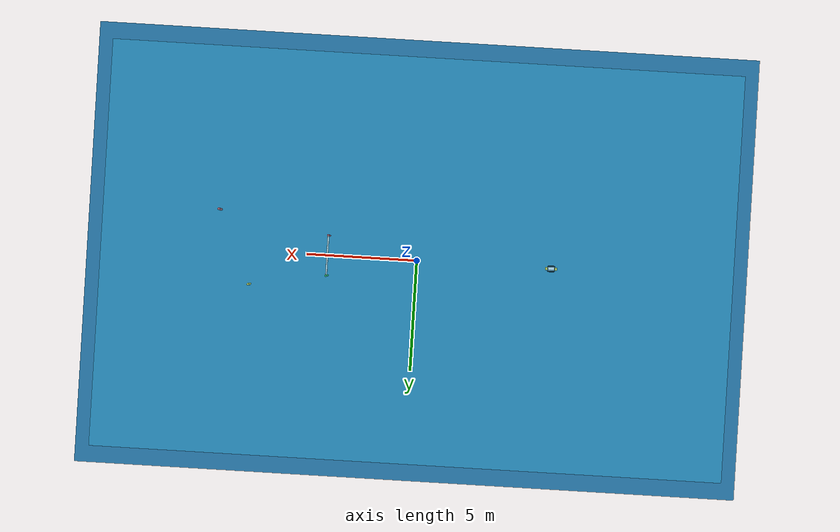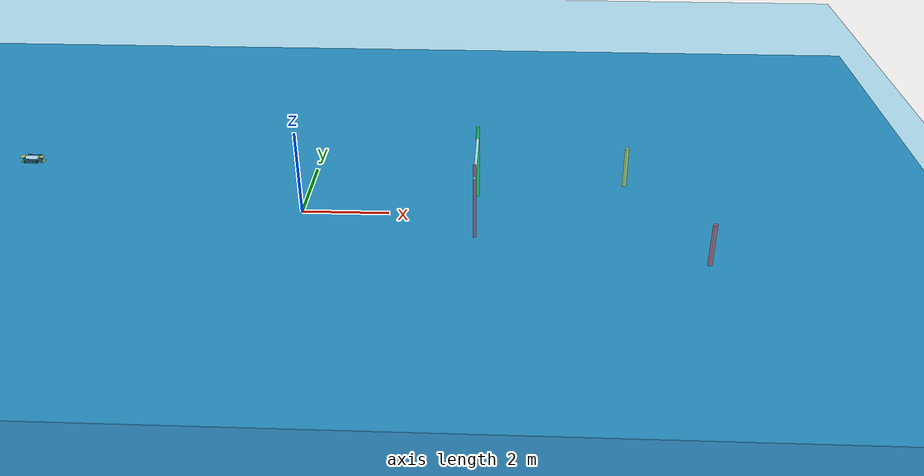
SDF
<?xml version="1.0" ?>
<!-- SAUVC Competition Subsea Pool World with Custom 6-Thruster AUV   -->
<sdf version="1.6">
  <world name="sauvc_subsea_pool">
    <!-- Sun Light Source -->
    <include>
      <uri>model://sun</uri>
    </include>

    <!-- Underwater Lighting & Ambience -->
    <scene>
      <ambient>0.25 0.5 0.7 1.0</ambient>
      <background>0.06 0.18 0.32 1.0</background>
      <shadows>true</shadows>
      <grid>true</grid>
    </scene>

    <physics type="ode">
      <max_step_size>0.002</max_step_size>
      <real_time_factor>1.0</real_time_factor>
      <real_time_update_rate>500</real_time_update_rate>
      <gravity>0 0 -9.81</gravity>
    </physics>

    <!-- 1. Competition Pool Ground Floor -->
    <model name="pool_floor">
      <static>true</static>
      <link name="floor_link">
        <collision name="collision">
          <geometry>
            <plane>
              <normal>0 0 1</normal>
              <size>30 20</size>
            </plane>
          </geometry>
        </collision>
        <visual name="visual">
          <geometry>
            <plane>
              <normal>0 0 1</normal>
              <size>30 20</size>
            </plane>
          </geometry>
          <material>
            <ambient>0.12 0.38 0.58 1</ambient>
            <diffuse>0.15 0.48 0.68 1</diffuse>
            <specular>0.3 0.3 0.3 1</specular>
          </material>
        </visual>
      </link>
    </model>

    <!-- 2. Water Volume Visual (Z = 2.0m surface) -->
    <model name="water_surface">
      <static>true</static>
      <pose>0 0 2.0 0 0 0</pose>
      <link name="surface_link">
        <visual name="visual">
          <geometry>
            <box>
              <size>28 18 0.02</size>
            </box>
          </geometry>
          <material>
            <ambient>0.2 0.75 0.95 0.35</ambient>
            <diffuse>0.2 0.75 0.95 0.35</diffuse>
            <specular>0.9 0.9 0.9 0.8</specular>
          </material>
        </visual>
      </link>
    </model>

    <!-- 3. SAUVC Qualification Gate (At X = 4.0m, Z = 0.9m) -->
    <model name="sauvc_gate">
      <static>true</static>
      <pose>4.0 0 0.9 0 0 0</pose>

      <!-- Left Post (Red Marker Z = -0.9m) -->
      <link name="left_post">
        <pose>0 -0.9 0 0 0 0</pose>
        <collision name="col_left">
          <geometry>
            <cylinder>
              <radius>0.04</radius>
              <length>1.8</length>
            </cylinder>
          </geometry>
        </collision>
        <visual name="vis_left">
          <geometry>
            <cylinder>
              <radius>0.04</radius>
              <length>1.8</length>
            </cylinder>
          </geometry>
          <material>
            <ambient>0.9 0.15 0.15 1</ambient>
            <diffuse>0.9 0.15 0.15 1</diffuse>
          </material>
        </visual>
      </link>

      <!-- Right Post (Green Marker Z = +0.9m) -->
      <link name="right_post">
        <pose>0 0.9 0 0 0 0</pose>
        <collision name="col_right">
          <geometry>
            <cylinder>
              <radius>0.04</radius>
              <length>1.8</length>
            </cylinder>
          </geometry>
        </collision>
        <visual name="vis_right">
          <geometry>
            <cylinder>
              <radius>0.04</radius>
              <length>1.8</length>
            </cylinder>
          </geometry>
          <material>
            <ambient>0.1 0.85 0.25 1</ambient>
            <diffuse>0.1 0.85 0.25 1</diffuse>
          </material>
        </visual>
      </link>

      <!-- Top Crossbar -->
      <link name="top_crossbar">
        <pose>0 0 0.6 1.5708 0 0</pose>
        <collision name="col_cross">
          <geometry>
            <cylinder>
              <radius>0.035</radius>
              <length>1.88</length>
            </cylinder>
          </geometry>
        </collision>
        <visual name="vis_cross">
          <geometry>
            <cylinder>
              <radius>0.035</radius>
              <length>1.88</length>
            </cylinder>
          </geometry>
          <material>
            <ambient>0.95 0.95 0.95 1</ambient>
            <diffuse>0.95 0.95 0.95 1</diffuse>
          </material>
        </visual>
      </link>
    </model>

    <!-- 4. Flare Targets on Pool Floor -->
    <model name="flare_yellow">
      <static>true</static>
      <pose>7.5 1.5 0.5 0 0 0</pose>
      <link name="link">
        <visual name="vis">
          <geometry>
            <cylinder>
              <radius>0.05</radius>
              <length>1.0</length>
            </cylinder>
          </geometry>
          <material>
            <ambient>0.95 0.85 0.1 1</ambient>
            <diffuse>0.95 0.85 0.1 1</diffuse>
          </material>
        </visual>
      </link>
    </model>

    <model name="flare_red">
      <static>true</static>
      <pose>9.0 -1.8 0.5 0 0 0</pose>
      <link name="link">
        <visual name="vis">
          <geometry>
            <cylinder>
              <radius>0.05</radius>
              <length>1.0</length>
            </cylinder>
          </geometry>
          <material>
            <ambient>0.9 0.2 0.2 1</ambient>
            <diffuse>0.9 0.2 0.2 1</diffuse>
          </material>
        </visual>
      </link>
    </model>

    <!-- 5. CUSTOM 6-THRUSTER SUBSEA AUV ROBOT EMBEDDED IN WORLD         -->
    <model name="custom_auv_robot">
      <pose>-6.0 0 1.25 0 0 0</pose>
      <static>false</static>

      <link name="base_link">
        <inertial>
          <mass>22.5</mass>
          <inertia>
            <ixx>0.12</ixx>
            <iyy>0.22</iyy>
            <izz>0.24</izz>
          </inertia>
        </inertial>

        <!-- Main White Cylindrical Core Body -->
        <visual name="core_cylinder">
          <pose>0 0 0 0 1.5708 0</pose>
          <geometry>
            <cylinder>
              <radius>0.075</radius>
              <length>0.28</length>
            </cylinder>
          </geometry>
          <material>
            <ambient>0.95 0.95 0.98 1</ambient>
            <diffuse>0.95 0.95 0.98 1</diffuse>
          </material>
        </visual>
        <collision name="core_col">
          <pose>0 0 0 0 1.5708 0</pose>
          <geometry>
            <cylinder>
              <radius>0.075</radius>
              <length>0.28</length>
            </cylinder>
          </geometry>
        </collision>

        <!-- Clear Acrylic Electronics Top Box -->
        <visual name="electronics_box">
          <pose>0 0 0.065 0 0 0</pose>
          <geometry>
            <box>
              <size>0.22 0.19 0.062</size>
            </box>
          </geometry>
          <material>
            <ambient>0.7 0.9 1.0 0.6</ambient>
            <diffuse>0.7 0.9 1.0 0.6</diffuse>
          </material>
        </visual>

        <!-- Dual Stacked Carbon Fiber Tubes (Port Side: +Y) -->
        <visual name="port_tube_upper">
          <pose>0 0.118 0.026 0 1.5708 0</pose>
          <geometry>
            <cylinder>
              <radius>0.024</radius>
              <length>0.30</length>
            </cylinder>
          </geometry>
          <material>
            <ambient>0.1 0.1 0.12 1</ambient>
            <diffuse>0.1 0.1 0.12 1</diffuse>
          </material>
        </visual>
        <visual name="port_tube_lower">
          <pose>0 0.118 -0.026 0 1.5708 0</pose>
          <geometry>
            <cylinder>
              <radius>0.024</radius>
              <length>0.30</length>
            </cylinder>
          </geometry>
          <material>
            <ambient>0.1 0.1 0.12 1</ambient>
            <diffuse>0.1 0.1 0.12 1</diffuse>
          </material>
        </visual>

        <!-- Dual Stacked Carbon Fiber Tubes (Starboard Side: -Y) -->
        <visual name="stbd_tube_upper">
          <pose>0 -0.118 0.026 0 1.5708 0</pose>
          <geometry>
            <cylinder>
              <radius>0.024</radius>
              <length>0.30</length>
            </cylinder>
          </geometry>
          <material>
            <ambient>0.1 0.1 0.12 1</ambient>
            <diffuse>0.1 0.1 0.12 1</diffuse>
          </material>
        </visual>
        <visual name="stbd_tube_lower">
          <pose>0 -0.118 -0.026 0 1.5708 0</pose>
          <geometry>
            <cylinder>
              <radius>0.024</radius>
              <length>0.30</length>
            </cylinder>
          </geometry>
          <material>
            <ambient>0.1 0.1 0.12 1</ambient>
            <diffuse>0.1 0.1 0.12 1</diffuse>
          </material>
        </visual>

        <!-- Front Aerodynamic Yellow Visor (+X = 0.20) -->
        <visual name="front_yellow_visor">
          <pose>0.21 0 0.054 0 0 0</pose>
          <geometry>
            <box>
              <size>0.095 0.124 0.008</size>
            </box>
          </geometry>
          <material>
            <ambient>0.95 0.82 0.05 1</ambient>
            <diffuse>0.95 0.82 0.05 1</diffuse>
          </material>
        </visual>
        <visual name="front_yellow_lip">
          <pose>0.21 0 -0.054 0 0 0</pose>
          <geometry>
            <box>
              <size>0.095 0.124 0.008</size>
            </box>
          </geometry>
          <material>
            <ambient>0.95 0.82 0.05 1</ambient>
            <diffuse>0.95 0.82 0.05 1</diffuse>
          </material>
        </visual>
        <visual name="front_duct_tube">
          <pose>0.18 0 0 0 0 0</pose>
          <geometry>
            <cylinder>
              <radius>0.038</radius>
              <length>0.108</length>
            </cylinder>
          </geometry>
          <material>
            <ambient>0.08 0.08 0.1 1</ambient>
            <diffuse>0.08 0.08 0.1 1</diffuse>
          </material>
        </visual>

        <!-- Rear Aerodynamic Yellow Visor (-X = -0.20) -->
        <visual name="rear_yellow_visor">
          <pose>-0.21 0 0.054 0 0 0</pose>
          <geometry>
            <box>
              <size>0.095 0.124 0.008</size>
            </box>
          </geometry>
          <material>
            <ambient>0.95 0.82 0.05 1</ambient>
            <diffuse>0.95 0.82 0.05 1</diffuse>
          </material>
        </visual>
        <visual name="rear_yellow_lip">
          <pose>-0.21 0 -0.054 0 0 0</pose>
          <geometry>
            <box>
              <size>0.095 0.124 0.008</size>
            </box>
          </geometry>
          <material>
            <ambient>0.95 0.82 0.05 1</ambient>
            <diffuse>0.95 0.82 0.05 1</diffuse>
          </material>
        </visual>
        <visual name="rear_duct_tube">
          <pose>-0.18 0 0 0 0 0</pose>
          <geometry>
            <cylinder>
              <radius>0.038</radius>
              <length>0.108</length>
            </cylinder>
          </geometry>
          <material>
            <ambient>0.08 0.08 0.1 1</ambient>
            <diffuse>0.08 0.08 0.1 1</diffuse>
          </material>
        </visual>

        <!-- 4x Horizontal 45° Corner Thrusters -->
        <visual name="thruster_fl">
          <pose>0.14 0.11 0 0 1.5708 0.7854</pose>
          <geometry>
            <cylinder>
              <radius>0.038</radius>
              <length>0.032</length>
            </cylinder>
          </geometry>
          <material>
            <ambient>0.08 0.08 0.1 1</ambient>
            <diffuse>0.08 0.08 0.1 1</diffuse>
          </material>
        </visual>
        <visual name="thruster_fr">
          <pose>0.14 -0.11 0 0 1.5708 -0.7854</pose>
          <geometry>
            <cylinder>
              <radius>0.038</radius>
              <length>0.032</length>
            </cylinder>
          </geometry>
          <material>
            <ambient>0.08 0.08 0.1 1</ambient>
            <diffuse>0.08 0.08 0.1 1</diffuse>
          </material>
        </visual>
        <visual name="thruster_rl">
          <pose>-0.14 0.11 0 0 1.5708 2.3562</pose>
          <geometry>
            <cylinder>
              <radius>0.038</radius>
              <length>0.032</length>
            </cylinder>
          </geometry>
          <material>
            <ambient>0.08 0.08 0.1 1</ambient>
            <diffuse>0.08 0.08 0.1 1</diffuse>
          </material>
        </visual>
        <visual name="thruster_rr">
          <pose>-0.14 -0.11 0 0 1.5708 -2.3562</pose>
          <geometry>
            <cylinder>
              <radius>0.038</radius>
              <length>0.032</length>
            </cylinder>
          </geometry>
          <material>
            <ambient>0.08 0.08 0.1 1</ambient>
            <diffuse>0.08 0.08 0.1 1</diffuse>
          </material>
        </visual>
      </link>
    </model>

  </world>
</sdf>
